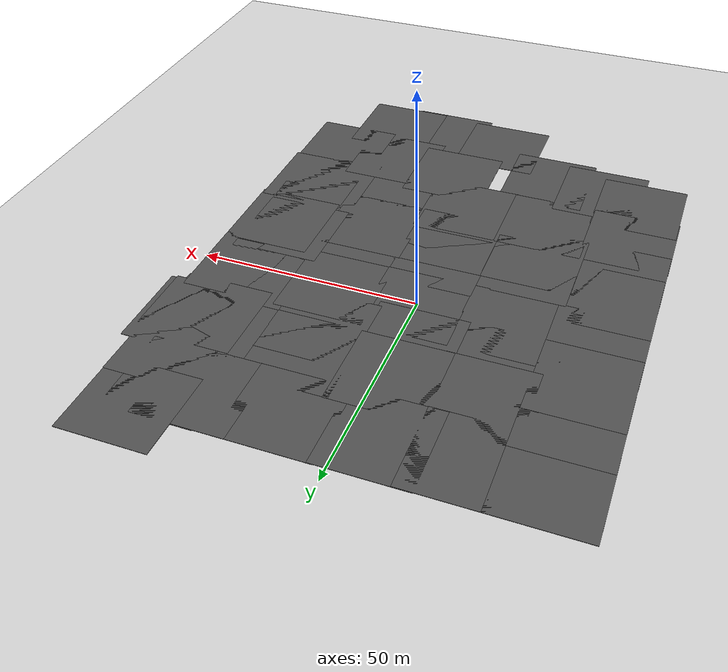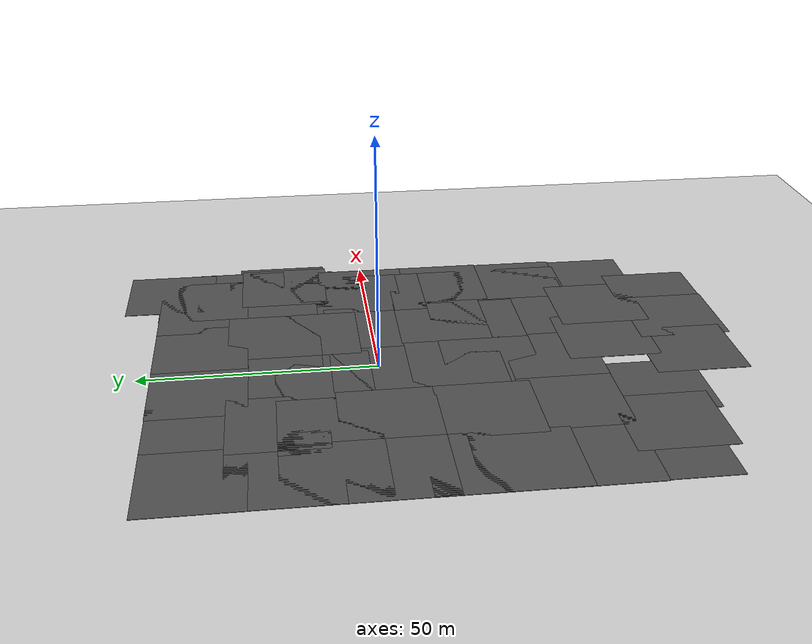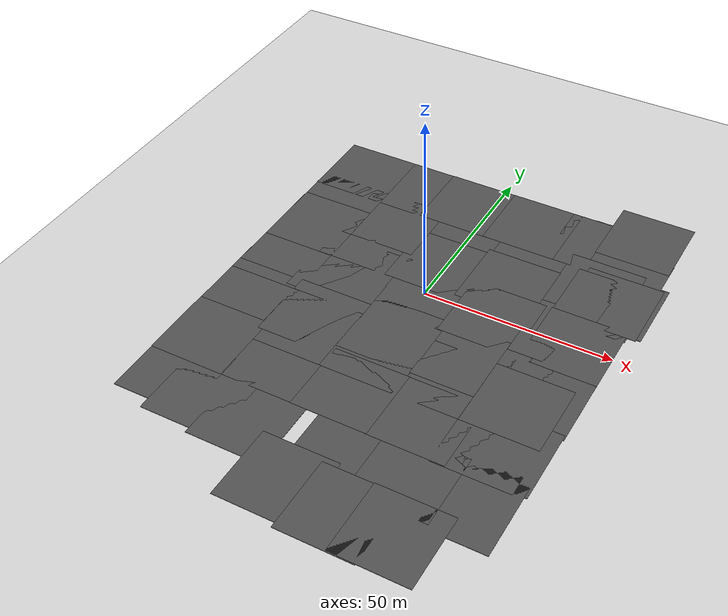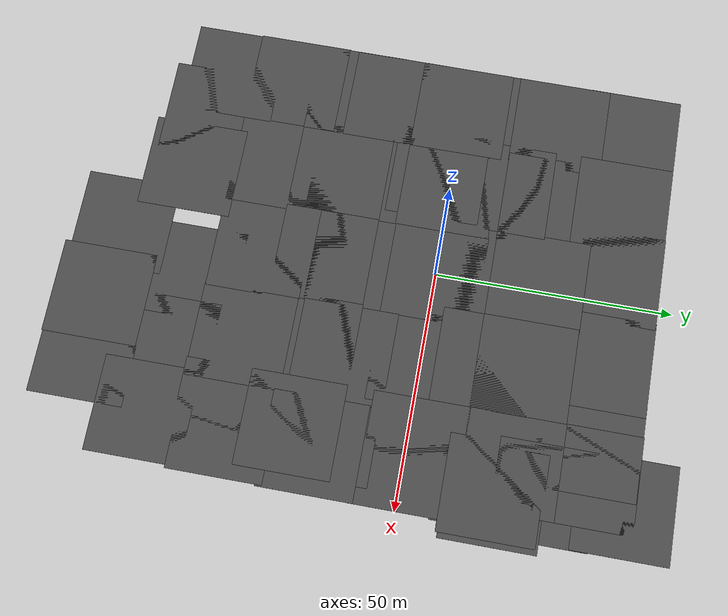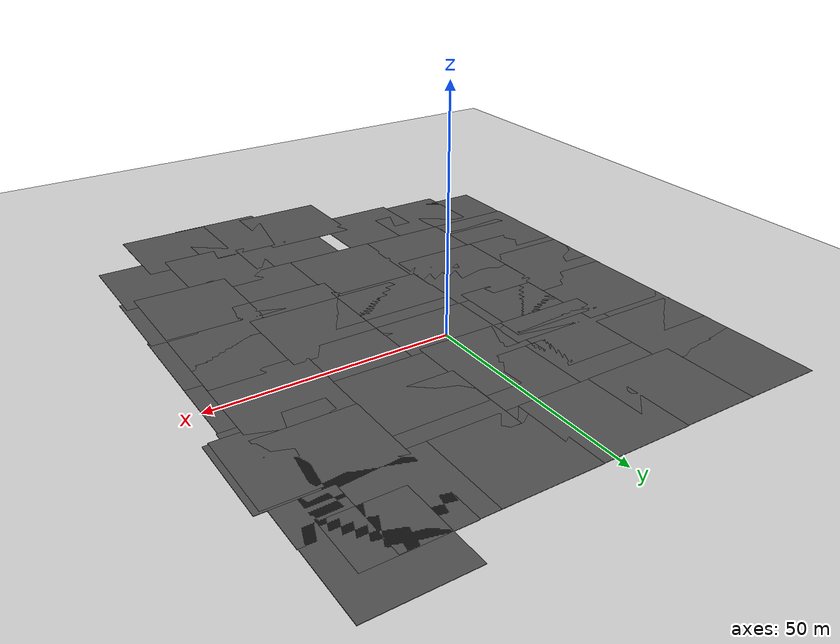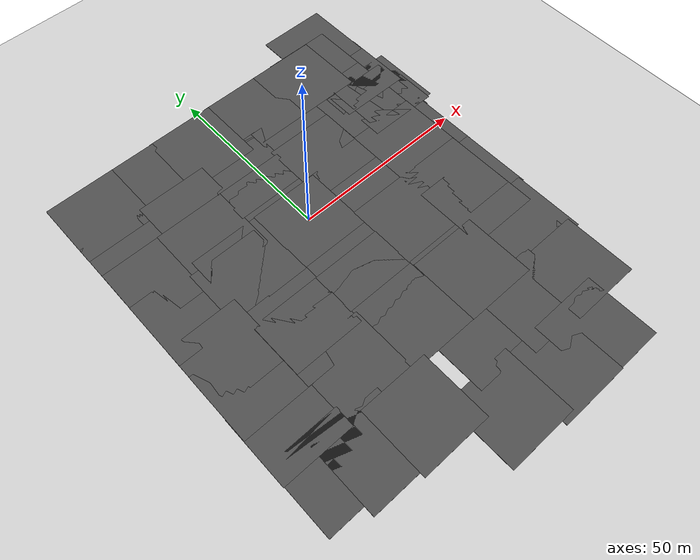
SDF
<sdf version="1.6">
 <world name="default">
  <light name="sun" type="directional">
   <pose>0 0 10 0 -0 0</pose>
   <diffuse>0.8 0.8 0.8 1</diffuse>
   <specular>0.1 0.1 0.1 1</specular>
   <attenuation>
    <range>1000</range>
    <constant>0.9</constant>
    <linear>0.01</linear>
    <quadratic>0.001</quadratic>
   </attenuation>
   <direction>-0.5 0.5 -1</direction>
  </light>
  <model name="ground_plane">
   <static>1</static>
   <link name="link">
    <collision name="collision">
     <geometry><plane><normal>0 0 1</normal><size>100 100</size></plane></geometry>
     <surface><friction><ode><mu>100</mu><mu2>50</mu2></ode></friction></surface>
    </collision>
    <visual name="visual">
     <cast_shadows>0</cast_shadows>
     <geometry><plane><normal>0 0 1</normal><size>100 100</size></plane></geometry>
     <material>
      <script><uri>file://media/materials/scripts/gazebo.material</uri><name>Gazebo/Grey</name></script>
     </material>
    </visual>
   </link>
  </model>
  <gravity>0 0 -9.8</gravity>
  <magnetic_field>6e-06 2.3e-05 -4.2e-05</magnetic_field>
  <atmosphere type="adiabatic"/>
  <physics name="default_physics" default="0" type="ode">
   <max_step_size>0.001</max_step_size>
   <real_time_factor>1</real_time_factor>
   <real_time_update_rate>1000</real_time_update_rate>
  </physics>
  <scene><ambient>0.4 0.4 0.4 1</ambient><background>0.7 0.7 0.7 1</background><shadows>1</shadows></scene>
  <spherical_coordinates>
   <surface_model>EARTH_WGS84</surface_model>
   <latitude_deg>0</latitude_deg>
   <longitude_deg>0</longitude_deg>
   <elevation>0</elevation>
   <heading_deg>0</heading_deg>
  </spherical_coordinates>
  <model name="asphalt_plane">
   <static>1</static>
   <link name="link">
    <collision name="collision"><geometry><box><size>20 20 0.1</size></box></geometry></collision>
    <visual name="visual">
     <cast_shadows>0</cast_shadows>
     <geometry><box><size>20 20 0.1</size></box></geometry>
     <material>
      <script>
       <uri>model://asphalt_plane/materials/scripts</uri>
       <uri>model://asphalt_plane/materials/textures</uri>
       <name>vrc/asphalt</name>
      </script>
     </material>
    </visual>
   </link>
   <pose>0.045928 -0.054871 0 0 -0 0</pose>
  </model>
  <model name="asphalt_plane_0">
   <static>1</static>
   <link name="link">
    <collision name="collision"><geometry><box><size>20 20 0.1</size></box></geometry></collision>
    <visual name="visual">
     <cast_shadows>0</cast_shadows>
     <geometry><box><size>20 20 0.1</size></box></geometry>
     <material>
      <script>
       <uri>model://asphalt_plane/materials/scripts</uri>
       <uri>model://asphalt_plane/materials/textures</uri>
       <name>vrc/asphalt</name>
      </script>
     </material>
    </visual>
   </link>
   <pose>18.6107 0.08588 0 0 -0 0</pose>
  </model>
  <model name="asphalt_plane_1">
   <static>1</static>
   <link name="link">
    <collision name="collision"><geometry><box><size>20 20 0.1</size></box></geometry></collision>
    <visual name="visual">
     <cast_shadows>0</cast_shadows>
     <geometry><box><size>20 20 0.1</size></box></geometry>
     <material>
      <script>
       <uri>model://asphalt_plane/materials/scripts</uri>
       <uri>model://asphalt_plane/materials/textures</uri>
       <name>vrc/asphalt</name>
      </script>
     </material>
    </visual>
   </link>
   <pose>19.8898 -16.0245 0 0 -0 0</pose>
  </model>
  <model name="asphalt_plane_2">
   <static>1</static>
   <link name="link">
    <collision name="collision"><geometry><box><size>20 20 0.1</size></box></geometry></collision>
    <visual name="visual">
     <cast_shadows>0</cast_shadows>
     <geometry><box><size>20 20 0.1</size></box></geometry>
     <material>
      <script>
       <uri>model://asphalt_plane/materials/scripts</uri>
       <uri>model://asphalt_plane/materials/textures</uri>
       <name>vrc/asphalt</name>
      </script>
     </material>
    </visual>
   </link>
   <pose>0.119911 -16.3209 0 0 -0 0</pose>
  </model>
  <model name="asphalt_plane_3">
   <static>1</static>
   <link name="link">
    <collision name="collision"><geometry><box><size>20 20 0.1</size></box></geometry></collision>
    <visual name="visual">
     <cast_shadows>0</cast_shadows>
     <geometry><box><size>20 20 0.1</size></box></geometry>
     <material>
      <script>
       <uri>model://asphalt_plane/materials/scripts</uri>
       <uri>model://asphalt_plane/materials/textures</uri>
       <name>vrc/asphalt</name>
      </script>
     </material>
    </visual>
   </link>
   <pose>36.5205 1.78424 0 0 -0 0</pose>
  </model>
  <model name="asphalt_plane_3_clone">
   <static>1</static>
   <link name="link">
    <collision name="collision"><geometry><box><size>20 20 0.1</size></box></geometry></collision>
    <visual name="visual">
     <cast_shadows>0</cast_shadows>
     <geometry><box><size>20 20 0.1</size></box></geometry>
     <material>
      <script>
       <uri>model://asphalt_plane/materials/scripts</uri>
       <uri>model://asphalt_plane/materials/textures</uri>
       <name>vrc/asphalt</name>
      </script>
     </material>
    </visual>
   </link>
   <pose>36.4746 -16.1951 0 0 -0 0</pose>
  </model>
  <model name="asphalt_plane_4">
   <static>1</static>
   <link name="link">
    <collision name="collision"><geometry><box><size>20 20 0.1</size></box></geometry></collision>
    <visual name="visual">
     <cast_shadows>0</cast_shadows>
     <geometry><box><size>20 20 0.1</size></box></geometry>
     <material>
      <script>
       <uri>model://asphalt_plane/materials/scripts</uri>
       <uri>model://asphalt_plane/materials/textures</uri>
       <name>vrc/asphalt</name>
      </script>
     </material>
    </visual>
   </link>
   <pose>0.064977 -23.8301 0 0 -0 0</pose>
  </model>
  <model name="asphalt_plane_3_clone_0">
   <static>1</static>
   <link name="link">
    <collision name="collision"><geometry><box><size>20 20 0.1</size></box></geometry></collision>
    <visual name="visual">
     <cast_shadows>0</cast_shadows>
     <geometry><box><size>20 20 0.1</size></box></geometry>
     <material>
      <script>
       <uri>model://asphalt_plane/materials/scripts</uri>
       <uri>model://asphalt_plane/materials/textures</uri>
       <name>vrc/asphalt</name>
      </script>
     </material>
    </visual>
   </link>
   <pose>19.1551 -23.7347 0 0 -0 0</pose>
  </model>
  <model name="asphalt_plane_3_clone_1">
   <static>1</static>
   <link name="link">
    <collision name="collision"><geometry><box><size>20 20 0.1</size></box></geometry></collision>
    <visual name="visual">
     <cast_shadows>0</cast_shadows>
     <geometry><box><size>20 20 0.1</size></box></geometry>
     <material>
      <script>
       <uri>model://asphalt_plane/materials/scripts</uri>
       <uri>model://asphalt_plane/materials/textures</uri>
       <name>vrc/asphalt</name>
      </script>
     </material>
    </visual>
   </link>
   <pose>36.4908 -23.7461 0 0 -0 0</pose>
  </model>
  <model name="asphalt_plane_5">
   <static>1</static>
   <link name="link">
    <collision name="collision"><geometry><box><size>20 20 0.1</size></box></geometry></collision>
    <visual name="visual">
     <cast_shadows>0</cast_shadows>
     <geometry><box><size>20 20 0.1</size></box></geometry>
     <material>
      <script>
       <uri>model://asphalt_plane/materials/scripts</uri>
       <uri>model://asphalt_plane/materials/textures</uri>
       <name>vrc/asphalt</name>
      </script>
     </material>
    </visual>
   </link>
   <pose>-19.7441 -0.251191 0 0 -0 0</pose>
  </model>
  <model name="asphalt_plane_5_clone">
   <static>1</static>
   <link name="link">
    <collision name="collision"><geometry><box><size>20 20 0.1</size></box></geometry></collision>
    <visual name="visual">
     <cast_shadows>0</cast_shadows>
     <geometry><box><size>20 20 0.1</size></box></geometry>
     <material>
      <script>
       <uri>model://asphalt_plane/materials/scripts</uri>
       <uri>model://asphalt_plane/materials/textures</uri>
       <name>vrc/asphalt</name>
      </script>
     </material>
    </visual>
   </link>
   <pose>-19.6595 -19.8935 0 0 -0 0</pose>
  </model>
  <model name="asphalt_plane_5_clone_0">
   <static>1</static>
   <link name="link">
    <collision name="collision"><geometry><box><size>20 20 0.1</size></box></geometry></collision>
    <visual name="visual">
     <cast_shadows>0</cast_shadows>
     <geometry><box><size>20 20 0.1</size></box></geometry>
     <material>
      <script>
       <uri>model://asphalt_plane/materials/scripts</uri>
       <uri>model://asphalt_plane/materials/textures</uri>
       <name>vrc/asphalt</name>
      </script>
     </material>
    </visual>
   </link>
   <pose>-19.7134 -23.8216 0 0 -0 0</pose>
  </model>
  <model name="asphalt_plane_5_clone_1">
   <static>1</static>
   <link name="link">
    <collision name="collision"><geometry><box><size>20 20 0.1</size></box></geometry></collision>
    <visual name="visual">
     <cast_shadows>0</cast_shadows>
     <geometry><box><size>20 20 0.1</size></box></geometry>
     <material>
      <script>
       <uri>model://asphalt_plane/materials/scripts</uri>
       <uri>model://asphalt_plane/materials/textures</uri>
       <name>vrc/asphalt</name>
      </script>
     </material>
    </visual>
   </link>
   <pose>-38.1808 -0.234794 0 0 -0 0</pose>
  </model>
  <model name="asphalt_plane_5_clone_2">
   <static>1</static>
   <link name="link">
    <collision name="collision"><geometry><box><size>20 20 0.1</size></box></geometry></collision>
    <visual name="visual">
     <cast_shadows>0</cast_shadows>
     <geometry><box><size>20 20 0.1</size></box></geometry>
     <material>
      <script>
       <uri>model://asphalt_plane/materials/scripts</uri>
       <uri>model://asphalt_plane/materials/textures</uri>
       <name>vrc/asphalt</name>
      </script>
     </material>
    </visual>
   </link>
   <pose>-38.1996 -15.1517 0 0 -0 0</pose>
  </model>
  <model name="asphalt_plane_5_clone_3">
   <static>1</static>
   <link name="link">
    <collision name="collision"><geometry><box><size>20 20 0.1</size></box></geometry></collision>
    <visual name="visual">
     <cast_shadows>0</cast_shadows>
     <geometry><box><size>20 20 0.1</size></box></geometry>
     <material>
      <script>
       <uri>model://asphalt_plane/materials/scripts</uri>
       <uri>model://asphalt_plane/materials/textures</uri>
       <name>vrc/asphalt</name>
      </script>
     </material>
    </visual>
   </link>
   <pose>-38.2336 -23.882 0 0 -0 0</pose>
  </model>
  <model name="asphalt_plane_5_clone_4">
   <static>1</static>
   <link name="link">
    <collision name="collision"><geometry><box><size>20 20 0.1</size></box></geometry></collision>
    <visual name="visual">
     <cast_shadows>0</cast_shadows>
     <geometry><box><size>20 20 0.1</size></box></geometry>
     <material>
      <script>
       <uri>model://asphalt_plane/materials/scripts</uri>
       <uri>model://asphalt_plane/materials/textures</uri>
       <name>vrc/asphalt</name>
      </script>
     </material>
    </visual>
   </link>
   <pose>-22.3757 -2.97573 0 0 -0 0</pose>
  </model>
  <model name="asphalt_plane_6">
   <static>1</static>
   <link name="link">
    <collision name="collision"><geometry><box><size>20 20 0.1</size></box></geometry></collision>
    <visual name="visual">
     <cast_shadows>0</cast_shadows>
     <geometry><box><size>20 20 0.1</size></box></geometry>
     <material>
      <script>
       <uri>model://asphalt_plane/materials/scripts</uri>
       <uri>model://asphalt_plane/materials/textures</uri>
       <name>vrc/asphalt</name>
      </script>
     </material>
    </visual>
   </link>
   <pose>36.4614 21.5371 0 0 -0 0</pose>
  </model>
  <model name="asphalt_plane_5_clone_5">
   <static>1</static>
   <link name="link">
    <collision name="collision"><geometry><box><size>20 20 0.1</size></box></geometry></collision>
    <visual name="visual">
     <cast_shadows>0</cast_shadows>
     <geometry><box><size>20 20 0.1</size></box></geometry>
     <material>
      <script>
       <uri>model://asphalt_plane/materials/scripts</uri>
       <uri>model://asphalt_plane/materials/textures</uri>
       <name>vrc/asphalt</name>
      </script>
     </material>
    </visual>
   </link>
   <pose>16.5518 21.4392 0 0 -0 0</pose>
  </model>
  <model name="asphalt_plane_5_clone_6">
   <static>1</static>
   <link name="link">
    <collision name="collision"><geometry><box><size>20 20 0.1</size></box></geometry></collision>
    <visual name="visual">
     <cast_shadows>0</cast_shadows>
     <geometry><box><size>20 20 0.1</size></box></geometry>
     <material>
      <script>
       <uri>model://asphalt_plane/materials/scripts</uri>
       <uri>model://asphalt_plane/materials/textures</uri>
       <name>vrc/asphalt</name>
      </script>
     </material>
    </visual>
   </link>
   <pose>16.6112 13.0483 0 0 -0 0</pose>
  </model>
  <model name="asphalt_plane_5_clone_7">
   <static>1</static>
   <link name="link">
    <collision name="collision"><geometry><box><size>20 20 0.1</size></box></geometry></collision>
    <visual name="visual">
     <cast_shadows>0</cast_shadows>
     <geometry><box><size>20 20 0.1</size></box></geometry>
     <material>
      <script>
       <uri>model://asphalt_plane/materials/scripts</uri>
       <uri>model://asphalt_plane/materials/textures</uri>
       <name>vrc/asphalt</name>
      </script>
     </material>
    </visual>
   </link>
   <pose>-2.48635 11.6306 0 0 -0 0</pose>
  </model>
  <model name="asphalt_plane_5_clone_8">
   <static>1</static>
   <link name="link">
    <collision name="collision"><geometry><box><size>20 20 0.1</size></box></geometry></collision>
    <visual name="visual">
     <cast_shadows>0</cast_shadows>
     <geometry><box><size>20 20 0.1</size></box></geometry>
     <material>
      <script>
       <uri>model://asphalt_plane/materials/scripts</uri>
       <uri>model://asphalt_plane/materials/textures</uri>
       <name>vrc/asphalt</name>
      </script>
     </material>
    </visual>
   </link>
   <pose>-21.7662 11.5708 0 0 -0 0</pose>
  </model>
  <model name="asphalt_plane_5_clone_9">
   <static>1</static>
   <link name="link">
    <collision name="collision"><geometry><box><size>20 20 0.1</size></box></geometry></collision>
    <visual name="visual">
     <cast_shadows>0</cast_shadows>
     <geometry><box><size>20 20 0.1</size></box></geometry>
     <material>
      <script>
       <uri>model://asphalt_plane/materials/scripts</uri>
       <uri>model://asphalt_plane/materials/textures</uri>
       <name>vrc/asphalt</name>
      </script>
     </material>
    </visual>
   </link>
   <pose>-38.1457 11.4885 0 0 -0 0</pose>
  </model>
  <model name="asphalt_plane_5_clone_10">
   <static>1</static>
   <link name="link">
    <collision name="collision"><geometry><box><size>20 20 0.1</size></box></geometry></collision>
    <visual name="visual">
     <cast_shadows>0</cast_shadows>
     <geometry><box><size>20 20 0.1</size></box></geometry>
     <material>
      <script>
       <uri>model://asphalt_plane/materials/scripts</uri>
       <uri>model://asphalt_plane/materials/textures</uri>
       <name>vrc/asphalt</name>
      </script>
     </material>
    </visual>
   </link>
   <pose>-2.29285 21.5264 0 0 -0 0</pose>
  </model>
  <model name="asphalt_plane_5_clone_11">
   <static>1</static>
   <link name="link">
    <collision name="collision"><geometry><box><size>20 20 0.1</size></box></geometry></collision>
    <visual name="visual">
     <cast_shadows>0</cast_shadows>
     <geometry><box><size>20 20 0.1</size></box></geometry>
     <material>
      <script>
       <uri>model://asphalt_plane/materials/scripts</uri>
       <uri>model://asphalt_plane/materials/textures</uri>
       <name>vrc/asphalt</name>
      </script>
     </material>
    </visual>
   </link>
   <pose>-20.1874 21.4466 0 0 -0 0</pose>
  </model>
  <model name="asphalt_plane_5_clone_12">
   <static>1</static>
   <link name="link">
    <collision name="collision"><geometry><box><size>20 20 0.1</size></box></geometry></collision>
    <visual name="visual">
     <cast_shadows>0</cast_shadows>
     <geometry><box><size>20 20 0.1</size></box></geometry>
     <material>
      <script>
       <uri>model://asphalt_plane/materials/scripts</uri>
       <uri>model://asphalt_plane/materials/textures</uri>
       <name>vrc/asphalt</name>
      </script>
     </material>
    </visual>
   </link>
   <pose>-38.1677 21.361 0 0 -0 0</pose>
  </model>
  <model name="asphalt_plane_5_clone_13">
   <static>1</static>
   <link name="link">
    <collision name="collision"><geometry><box><size>20 20 0.1</size></box></geometry></collision>
    <visual name="visual">
     <cast_shadows>0</cast_shadows>
     <geometry><box><size>20 20 0.1</size></box></geometry>
     <material>
      <script>
       <uri>model://asphalt_plane/materials/scripts</uri>
       <uri>model://asphalt_plane/materials/textures</uri>
       <name>vrc/asphalt</name>
      </script>
     </material>
    </visual>
   </link>
   <pose>-38.1975 36.9309 0 0 -0 0</pose>
  </model>
  <model name="asphalt_plane_5_clone_14">
   <static>1</static>
   <link name="link">
    <collision name="collision"><geometry><box><size>20 20 0.1</size></box></geometry></collision>
    <visual name="visual">
     <cast_shadows>0</cast_shadows>
     <geometry><box><size>20 20 0.1</size></box></geometry>
     <material>
      <script>
       <uri>model://asphalt_plane/materials/scripts</uri>
       <uri>model://asphalt_plane/materials/textures</uri>
       <name>vrc/asphalt</name>
      </script>
     </material>
    </visual>
   </link>
   <pose>-22.0379 36.9265 0 0 -0 0</pose>
  </model>
  <model name="asphalt_plane_5_clone_15">
   <static>1</static>
   <link name="link">
    <collision name="collision"><geometry><box><size>20 20 0.1</size></box></geometry></collision>
    <visual name="visual">
     <cast_shadows>0</cast_shadows>
     <geometry><box><size>20 20 0.1</size></box></geometry>
     <material>
      <script>
       <uri>model://asphalt_plane/materials/scripts</uri>
       <uri>model://asphalt_plane/materials/textures</uri>
       <name>vrc/asphalt</name>
      </script>
     </material>
    </visual>
   </link>
   <pose>-6.15204 37.0354 0 0 -0 0</pose>
  </model>
  <model name="asphalt_plane_5_clone_16">
   <static>1</static>
   <link name="link">
    <collision name="collision"><geometry><box><size>20 20 0.1</size></box></geometry></collision>
    <visual name="visual">
     <cast_shadows>0</cast_shadows>
     <geometry><box><size>20 20 0.1</size></box></geometry>
     <material>
      <script>
       <uri>model://asphalt_plane/materials/scripts</uri>
       <uri>model://asphalt_plane/materials/textures</uri>
       <name>vrc/asphalt</name>
      </script>
     </material>
    </visual>
   </link>
   <pose>12.5519 37.1147 0 0 -0 0</pose>
  </model>
  <model name="asphalt_plane_5_clone_17">
   <static>1</static>
   <link name="link">
    <collision name="collision"><geometry><box><size>20 20 0.1</size></box></geometry></collision>
    <visual name="visual">
     <cast_shadows>0</cast_shadows>
     <geometry><box><size>20 20 0.1</size></box></geometry>
     <material>
      <script>
       <uri>model://asphalt_plane/materials/scripts</uri>
       <uri>model://asphalt_plane/materials/textures</uri>
       <name>vrc/asphalt</name>
      </script>
     </material>
    </visual>
   </link>
   <pose>30.0571 37.1356 0 0 -0 0</pose>
  </model>
  <model name="asphalt_plane_5_clone_18">
   <static>1</static>
   <link name="link">
    <collision name="collision"><geometry><box><size>20 20 0.1</size></box></geometry></collision>
    <visual name="visual">
     <cast_shadows>0</cast_shadows>
     <geometry><box><size>20 20 0.1</size></box></geometry>
     <material>
      <script>
       <uri>model://asphalt_plane/materials/scripts</uri>
       <uri>model://asphalt_plane/materials/textures</uri>
       <name>vrc/asphalt</name>
      </script>
     </material>
    </visual>
   </link>
   <pose>36.4598 37.2609 0 0 -0 0</pose>
  </model>
  <model name="asphalt_plane_5_clone_19">
   <static>1</static>
   <link name="link">
    <collision name="collision"><geometry><box><size>20 20 0.1</size></box></geometry></collision>
    <visual name="visual">
     <cast_shadows>0</cast_shadows>
     <geometry><box><size>20 20 0.1</size></box></geometry>
     <material>
      <script>
       <uri>model://asphalt_plane/materials/scripts</uri>
       <uri>model://asphalt_plane/materials/textures</uri>
       <name>vrc/asphalt</name>
      </script>
     </material>
    </visual>
   </link>
   <pose>-38.3304 -37.2011 0 0 -0 0</pose>
  </model>
  <model name="asphalt_plane_5_clone_20">
   <static>1</static>
   <link name="link">
    <collision name="collision"><geometry><box><size>20 20 0.1</size></box></geometry></collision>
    <visual name="visual">
     <cast_shadows>0</cast_shadows>
     <geometry><box><size>20 20 0.1</size></box></geometry>
     <material>
      <script>
       <uri>model://asphalt_plane/materials/scripts</uri>
       <uri>model://asphalt_plane/materials/textures</uri>
       <name>vrc/asphalt</name>
      </script>
     </material>
    </visual>
   </link>
   <pose>-18.8547 -37.1379 0 0 -0 0</pose>
  </model>
  <model name="asphalt_plane_5_clone_21">
   <static>1</static>
   <link name="link">
    <collision name="collision"><geometry><box><size>20 20 0.1</size></box></geometry></collision>
    <visual name="visual">
     <cast_shadows>0</cast_shadows>
     <geometry><box><size>20 20 0.1</size></box></geometry>
     <material>
      <script>
       <uri>model://asphalt_plane/materials/scripts</uri>
       <uri>model://asphalt_plane/materials/textures</uri>
       <name>vrc/asphalt</name>
      </script>
     </material>
    </visual>
   </link>
   <pose>0.656788 -37.2329 0 0 -0 0</pose>
  </model>
  <model name="asphalt_plane_5_clone_22">
   <static>1</static>
   <link name="link">
    <collision name="collision"><geometry><box><size>20 20 0.1</size></box></geometry></collision>
    <visual name="visual">
     <cast_shadows>0</cast_shadows>
     <geometry><box><size>20 20 0.1</size></box></geometry>
     <material>
      <script>
       <uri>model://asphalt_plane/materials/scripts</uri>
       <uri>model://asphalt_plane/materials/textures</uri>
       <name>vrc/asphalt</name>
      </script>
     </material>
    </visual>
   </link>
   <pose>20.2306 -37.3317 0 0 -0 0</pose>
  </model>
  <model name="asphalt_plane_5_clone_23">
   <static>1</static>
   <link name="link">
    <collision name="collision"><geometry><box><size>20 20 0.1</size></box></geometry></collision>
    <visual name="visual">
     <cast_shadows>0</cast_shadows>
     <geometry><box><size>20 20 0.1</size></box></geometry>
     <material>
      <script>
       <uri>model://asphalt_plane/materials/scripts</uri>
       <uri>model://asphalt_plane/materials/textures</uri>
       <name>vrc/asphalt</name>
      </script>
     </material>
    </visual>
   </link>
   <pose>36.447 -37.5512 0 0 -0 0</pose>
  </model>
  <model name="asphalt_plane_3_clone_clone">
   <static>1</static>
   <link name="link">
    <collision name="collision"><geometry><box><size>20 20 0.1</size></box></geometry></collision>
    <visual name="visual">
     <cast_shadows>0</cast_shadows>
     <geometry><box><size>20 20 0.1</size></box></geometry>
     <material>
      <script>
       <uri>model://asphalt_plane/materials/scripts</uri>
       <uri>model://asphalt_plane/materials/textures</uri>
       <name>vrc/asphalt</name>
      </script>
     </material>
    </visual>
   </link>
   <pose>8.35502 -50.5761 0 0 -0 0</pose>
  </model>
  <model name="asphalt_plane_3_clone_clone_0">
   <static>1</static>
   <link name="link">
    <collision name="collision"><geometry><box><size>20 20 0.1</size></box></geometry></collision>
    <visual name="visual">
     <cast_shadows>0</cast_shadows>
     <geometry><box><size>20 20 0.1</size></box></geometry>
     <material>
      <script>
       <uri>model://asphalt_plane/materials/scripts</uri>
       <uri>model://asphalt_plane/materials/textures</uri>
       <name>vrc/asphalt</name>
      </script>
     </material>
    </visual>
   </link>
   <pose>24.5054 -52.8195 0 0 -0 0</pose>
  </model>
  <model name="asphalt_plane_3_clone_clone_1">
   <static>1</static>
   <link name="link">
    <collision name="collision"><geometry><box><size>20 20 0.1</size></box></geometry></collision>
    <visual name="visual">
     <cast_shadows>0</cast_shadows>
     <geometry><box><size>20 20 0.1</size></box></geometry>
     <material>
      <script>
       <uri>model://asphalt_plane/materials/scripts</uri>
       <uri>model://asphalt_plane/materials/textures</uri>
       <name>vrc/asphalt</name>
      </script>
     </material>
    </visual>
   </link>
   <pose>-38.1275 -51.3529 0 0 -0 0</pose>
  </model>
  <model name="asphalt_plane_3_clone_clone_2">
   <static>1</static>
   <link name="link">
    <collision name="collision"><geometry><box><size>20 20 0.1</size></box></geometry></collision>
    <visual name="visual">
     <cast_shadows>0</cast_shadows>
     <geometry><box><size>20 20 0.1</size></box></geometry>
     <material>
      <script>
       <uri>model://asphalt_plane/materials/scripts</uri>
       <uri>model://asphalt_plane/materials/textures</uri>
       <name>vrc/asphalt</name>
      </script>
     </material>
    </visual>
   </link>
   <pose>-14.8602 -55.6797 0 0 -0 0</pose>
  </model>
  <model name="asphalt_plane_3_clone_clone_3">
   <static>1</static>
   <link name="link">
    <collision name="collision"><geometry><box><size>20 20 0.1</size></box></geometry></collision>
    <visual name="visual">
     <cast_shadows>0</cast_shadows>
     <geometry><box><size>20 20 0.1</size></box></geometry>
     <material>
      <script>
       <uri>model://asphalt_plane/materials/scripts</uri>
       <uri>model://asphalt_plane/materials/textures</uri>
       <name>vrc/asphalt</name>
      </script>
     </material>
    </visual>
   </link>
   <pose>-28.3726 -54.2561 0 0 -0 0</pose>
  </model>
  <model name="asphalt_plane_3_clone_clone_4">
   <static>1</static>
   <link name="link">
    <collision name="collision"><geometry><box><size>20 20 0.1</size></box></geometry></collision>
    <visual name="visual">
     <cast_shadows>0</cast_shadows>
     <geometry><box><size>20 20 0.1</size></box></geometry>
     <material>
      <script>
       <uri>model://asphalt_plane/materials/scripts</uri>
       <uri>model://asphalt_plane/materials/textures</uri>
       <name>vrc/asphalt</name>
      </script>
     </material>
    </visual>
   </link>
   <pose>0.201761 -67.2256 0 0 -0 0</pose>
  </model>
  <model name="asphalt_plane_3_clone_clone_5">
   <static>1</static>
   <link name="link">
    <collision name="collision"><geometry><box><size>20 20 0.1</size></box></geometry></collision>
    <visual name="visual">
     <cast_shadows>0</cast_shadows>
     <geometry><box><size>20 20 0.1</size></box></geometry>
     <material>
      <script>
       <uri>model://asphalt_plane/materials/scripts</uri>
       <uri>model://asphalt_plane/materials/textures</uri>
       <name>vrc/asphalt</name>
      </script>
     </material>
    </visual>
   </link>
   <pose>16.3181 -68.5782 0 0 -0 0</pose>
  </model>
  <model name="asphalt_plane_3_clone_clone_6">
   <static>1</static>
   <link name="link">
    <collision name="collision"><geometry><box><size>20 20 0.1</size></box></geometry></collision>
    <visual name="visual">
     <cast_shadows>0</cast_shadows>
     <geometry><box><size>20 20 0.1</size></box></geometry>
     <material>
      <script>
       <uri>model://asphalt_plane/materials/scripts</uri>
       <uri>model://asphalt_plane/materials/textures</uri>
       <name>vrc/asphalt</name>
      </script>
     </material>
    </visual>
   </link>
   <pose>29.2146 -68.3417 0 0 -0 0</pose>
  </model>
  <model name="asphalt_plane_3_clone_clone_7">
   <static>1</static>
   <link name="link">
    <collision name="collision"><geometry><box><size>20 20 0.1</size></box></geometry></collision>
    <visual name="visual">
     <cast_shadows>0</cast_shadows>
     <geometry><box><size>20 20 0.1</size></box></geometry>
     <material>
      <script>
       <uri>model://asphalt_plane/materials/scripts</uri>
       <uri>model://asphalt_plane/materials/textures</uri>
       <name>vrc/asphalt</name>
      </script>
     </material>
    </visual>
   </link>
   <pose>38.9238 -54.0449 0 0 -0 0</pose>
  </model>
  <model name="asphalt_plane_7">
   <static>1</static>
   <link name="link">
    <collision name="collision"><geometry><box><size>20 20 0.1</size></box></geometry></collision>
    <visual name="visual">
     <cast_shadows>0</cast_shadows>
     <geometry><box><size>20 20 0.1</size></box></geometry>
     <material>
      <script>
       <uri>model://asphalt_plane/materials/scripts</uri>
       <uri>model://asphalt_plane/materials/textures</uri>
       <name>vrc/asphalt</name>
      </script>
     </material>
    </visual>
   </link>
   <pose>41.0903 44.976 0 0 -0 0</pose>
  </model>
  <model name="asphalt_plane_8">
   <static>1</static>
   <link name="link">
    <collision name="collision"><geometry><box><size>20 20 0.1</size></box></geometry></collision>
    <visual name="visual">
     <cast_shadows>0</cast_shadows>
     <geometry><box><size>20 20 0.1</size></box></geometry>
     <material>
      <script>
       <uri>model://asphalt_plane/materials/scripts</uri>
       <uri>model://asphalt_plane/materials/textures</uri>
       <name>vrc/asphalt</name>
      </script>
     </material>
    </visual>
   </link>
   <pose>41.2208 28.6811 0 0 -0 0</pose>
  </model>
  <model name="asphalt_plane_9">
   <static>1</static>
   <link name="link">
    <collision name="collision"><geometry><box><size>20 20 0.1</size></box></geometry></collision>
    <visual name="visual">
     <cast_shadows>0</cast_shadows>
     <geometry><box><size>20 20 0.1</size></box></geometry>
     <material>
      <script>
       <uri>model://asphalt_plane/materials/scripts</uri>
       <uri>model://asphalt_plane/materials/textures</uri>
       <name>vrc/asphalt</name>
      </script>
     </material>
    </visual>
   </link>
   <pose>40.1844 16.9525 0 0 -0 0</pose>
  </model>
  <model name="asphalt_plane_10">
   <static>1</static>
   <link name="link">
    <collision name="collision"><geometry><box><size>20 20 0.1</size></box></geometry></collision>
    <visual name="visual">
     <cast_shadows>0</cast_shadows>
     <geometry><box><size>20 20 0.1</size></box></geometry>
     <material>
      <script>
       <uri>model://asphalt_plane/materials/scripts</uri>
       <uri>model://asphalt_plane/materials/textures</uri>
       <name>vrc/asphalt</name>
      </script>
     </material>
    </visual>
   </link>
   <pose>39.9013 0.289646 0 0 -0 0</pose>
  </model>
  <model name="asphalt_plane_11">
   <static>1</static>
   <link name="link">
    <collision name="collision"><geometry><box><size>20 20 0.1</size></box></geometry></collision>
    <visual name="visual">
     <cast_shadows>0</cast_shadows>
     <geometry><box><size>20 20 0.1</size></box></geometry>
     <material>
      <script>
       <uri>model://asphalt_plane/materials/scripts</uri>
       <uri>model://asphalt_plane/materials/textures</uri>
       <name>vrc/asphalt</name>
      </script>
     </material>
    </visual>
   </link>
   <pose>39.8774 -18.4691 0 0 -0 0</pose>
  </model>
  <model name="asphalt_plane_12">
   <static>1</static>
   <link name="link">
    <collision name="collision"><geometry><box><size>20 20 0.1</size></box></geometry></collision>
    <visual name="visual">
     <cast_shadows>0</cast_shadows>
     <geometry><box><size>20 20 0.1</size></box></geometry>
     <material>
      <script>
       <uri>model://asphalt_plane/materials/scripts</uri>
       <uri>model://asphalt_plane/materials/textures</uri>
       <name>vrc/asphalt</name>
      </script>
     </material>
    </visual>
   </link>
   <pose>39.5765 -36.9987 0 0 -0 0</pose>
  </model>
  <model name="asphalt_plane_13">
   <static>1</static>
   <link name="link">
    <collision name="collision"><geometry><box><size>20 20 0.1</size></box></geometry></collision>
    <visual name="visual">
     <cast_shadows>0</cast_shadows>
     <geometry><box><size>20 20 0.1</size></box></geometry>
     <material>
      <script>
       <uri>model://asphalt_plane/materials/scripts</uri>
       <uri>model://asphalt_plane/materials/textures</uri>
       <name>vrc/asphalt</name>
      </script>
     </material>
    </visual>
   </link>
   <pose>42.2812 18.5588 0 0 -0 0</pose>
  </model>
  <model name="asphalt_plane_6_clone">
   <static>1</static>
   <link name="link">
    <collision name="collision"><geometry><box><size>20 20 0.1</size></box></geometry></collision>
    <visual name="visual">
     <cast_shadows>0</cast_shadows>
     <geometry><box><size>20 20 0.1</size></box></geometry>
     <material>
      <script>
       <uri>model://asphalt_plane/materials/scripts</uri>
       <uri>model://asphalt_plane/materials/textures</uri>
       <name>vrc/asphalt</name>
      </script>
     </material>
    </visual>
   </link>
   <pose>43.415 19.0299 0 0 -0 0</pose>
  </model>
 </world>
</sdf>
